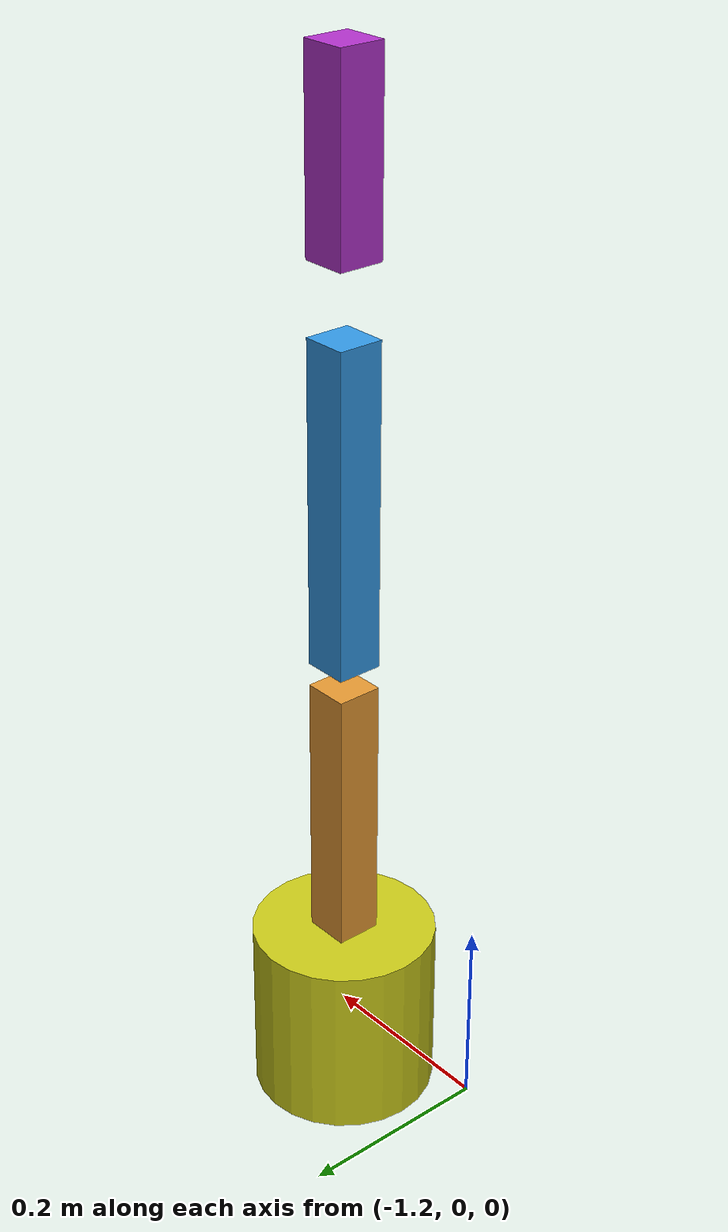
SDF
<?xml version="1.0"?>
<sdf version="1.9">
  <model name="simple_arm">
    <static>true</static>
    <pose>-1 0 0 0 0 0</pose>

    <!-- Base -->
    <link name="base">
      <collision name="col">
        <geometry><cylinder><radius>0.1</radius><length>0.2</length></cylinder></geometry>
      </collision>
      <visual name="vis">
        <geometry><cylinder><radius>0.1</radius><length>0.2</length></cylinder></geometry>
        <material>
          <ambient>0.8 0.8 0.1 1</ambient>
          <diffuse>0.8 0.8 0.1 1</diffuse>
        </material>
      </visual>
    </link>

    <!-- Link1 -->
    <link name="link1">
      <pose>0 0 0.2 0 0 0</pose>
      <collision name="col">
        <geometry><box><size>0.05 0.05 0.4</size></box></geometry>
      </collision>
      <visual name="vis">
        <geometry><box><size>0.05 0.05 0.4</size></box></geometry>
        <material>
          <ambient>0.9 0.6 0.2 1</ambient>
          <diffuse>0.9 0.6 0.2 1</diffuse>
        </material>
      </visual>
    </link>

    <!-- Link2 -->
    <link name="link2">
      <pose>0 0 0.6 0 0 0</pose>
      <collision name="col">
        <geometry><box><size>0.05 0.05 0.35</size></box></geometry>
      </collision>
      <visual name="vis">
        <geometry><box><size>0.05 0.05 0.35</size></box></geometry>
        <material>
          <ambient>0.2 0.6 0.9 1</ambient>
          <diffuse>0.2 0.6 0.9 1</diffuse>
        </material>
      </visual>
    </link>

    <!-- Link3 (end) -->
    <link name="link3">
      <pose>0 0 0.95 0 0 0</pose>
      <collision name="col">
        <geometry><box><size>0.05 0.05 0.2</size></box></geometry>
      </collision>
      <visual name="vis">
        <geometry><box><size>0.05 0.05 0.2</size></box></geometry>
        <material>
          <ambient>0.7 0.2 0.8 1</ambient>
          <diffuse>0.7 0.2 0.8 1</diffuse>
        </material>
      </visual>
    </link>

    <!-- Joints -->
    <joint name="joint1" type="revolute">
      <parent>base</parent>
      <child>link1</child>
      <axis><xyz>0 0 1</xyz></axis>
    </joint>

    <joint name="joint2" type="revolute">
      <parent>link1</parent>
      <child>link2</child>
      <axis><xyz>0 1 0</xyz></axis>
    </joint>

    <joint name="joint3" type="revolute">
      <parent>link2</parent>
      <child>link3</child>
      <axis><xyz>0 1 0</xyz></axis>
    </joint>

  </model>
</sdf>
